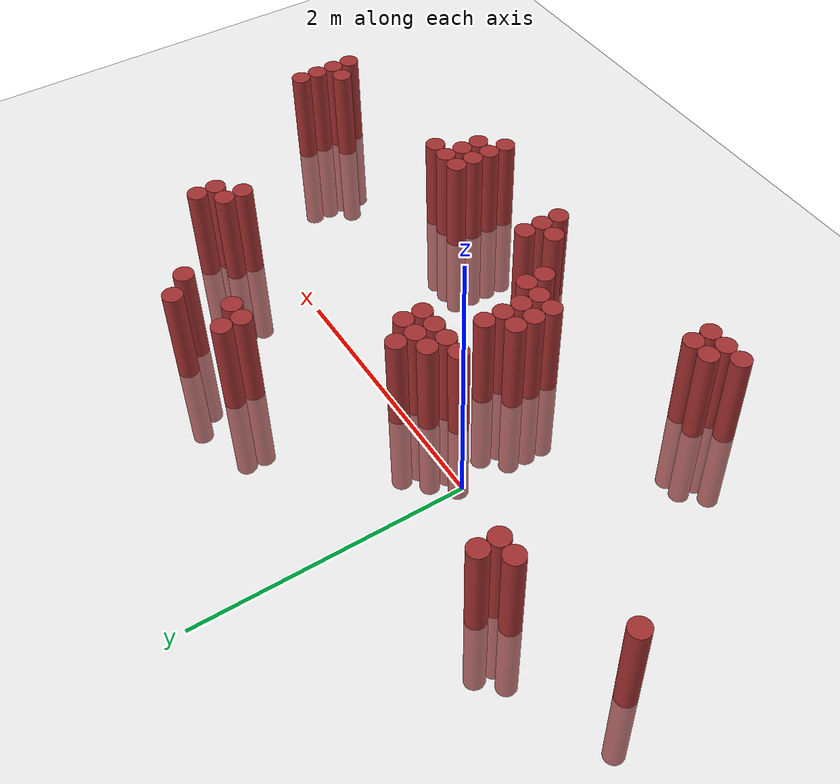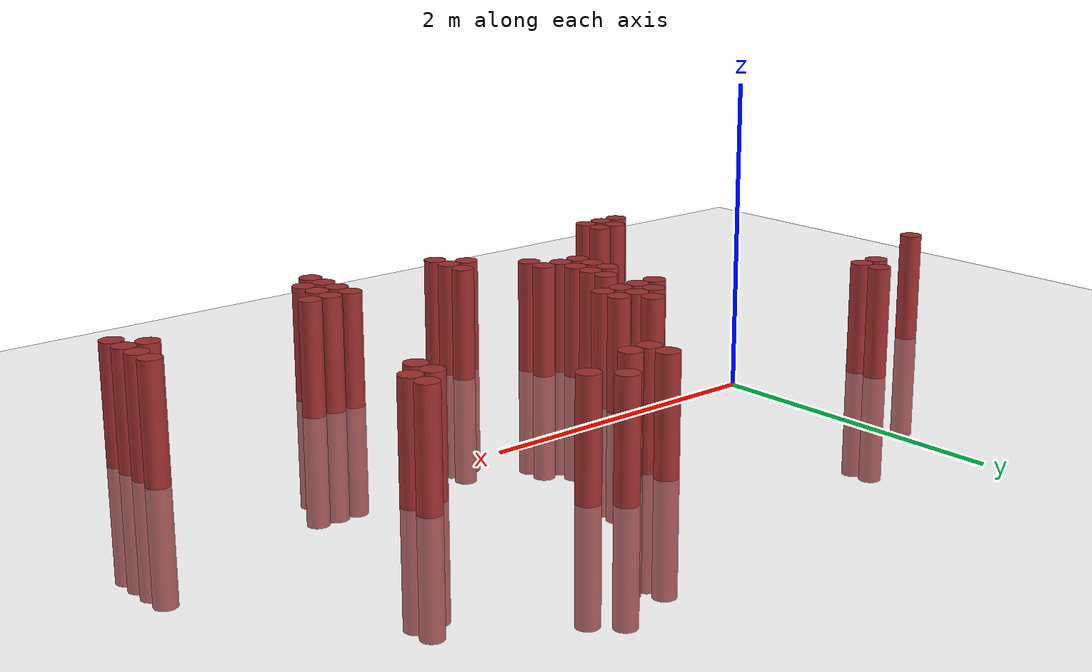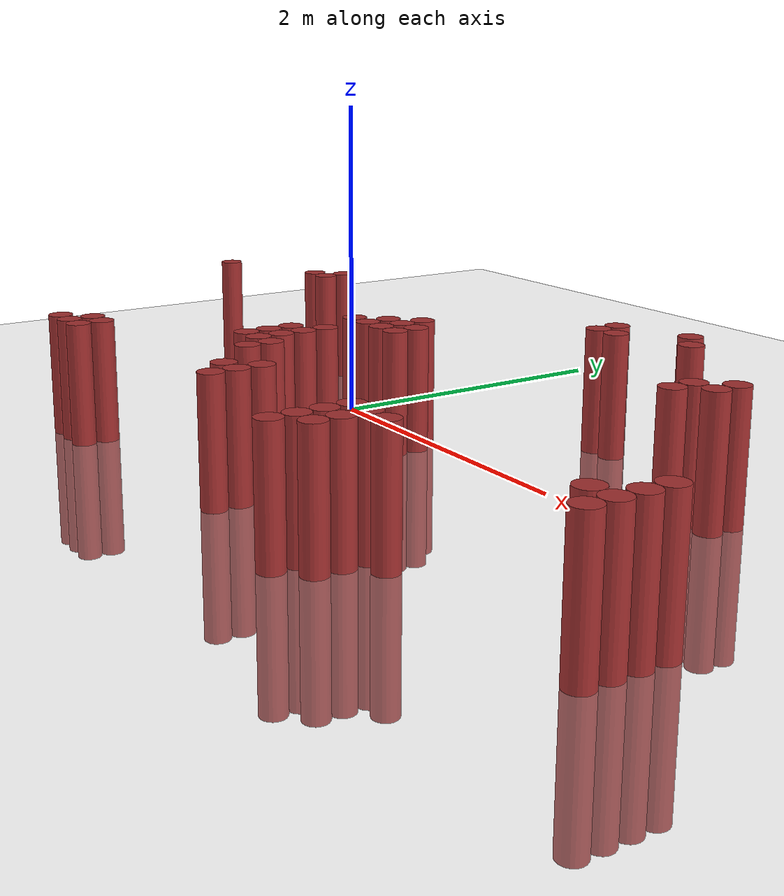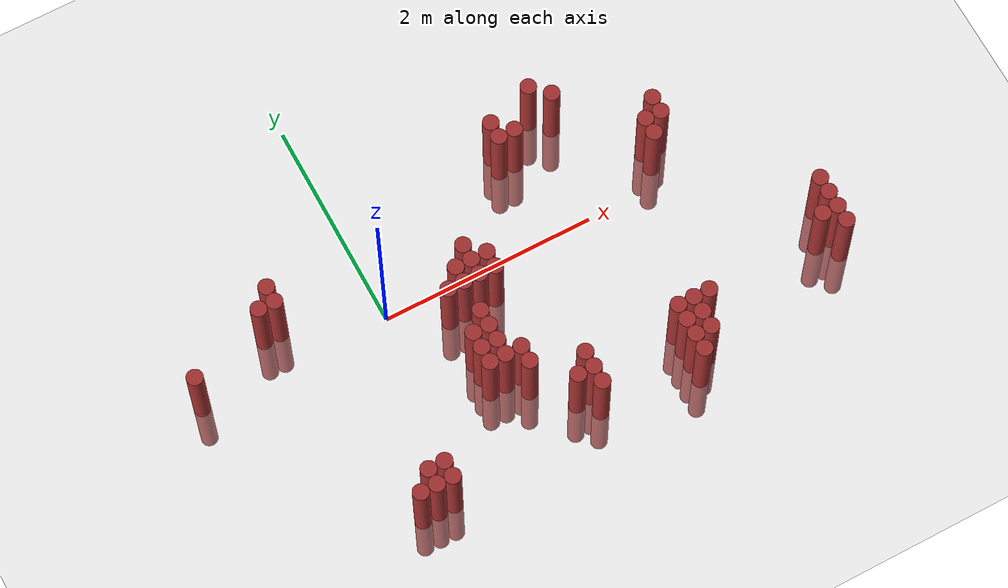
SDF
<sdf version="1.6">
 <world name="default">
  <model name="ground_plane">
   <static>1</static>
   <link name="link">
    <collision name="collision">
     <geometry><plane><normal>0 0 1</normal><size>100 100</size></plane></geometry>
     <surface><friction><ode><mu>100</mu><mu2>50</mu2></ode></friction></surface>
    </collision>
    <visual name="visual">
     <cast_shadows>0</cast_shadows>
     <geometry><plane><normal>0 0 1</normal><size>100 100</size></plane></geometry>
     <material>
      <script><uri>file://media/materials/scripts/gazebo.material</uri><name>Gazebo/Grey</name></script>
     </material>
    </visual>
   </link>
  </model>
  <model name="unit_cylinder_335">
   <static>1</static>
   <pose>-1.775000 0.025000 0.000000 0.000000 0.000000 0.000000</pose>
   <link name="link">
    <inertial>
     <mass>1</mass>
     <inertia><ixx>0.145833</ixx><ixy>0</ixy><ixz>0</ixz><iyy>0.145833</iyy><iyz>0</iyz><izz>0.125</izz></inertia>
    </inertial>
    <collision name="collision">
     <geometry><cylinder><radius>0.075000</radius><length>1.5</length></cylinder></geometry>
    </collision>
    <visual name="visual">
     <geometry><cylinder><radius>0.075000</radius><length>1.5</length></cylinder></geometry>
     <material>
      <ambient>0.648000 0.192000 0.192000 1</ambient>
      <diffuse>0.648000 0.192000 0.192000 1</diffuse>
     </material>
     <material>
      <script><name>Gazebo/Grey</name><uri>file://media/materials/scripts/gazebo.material</uri></script>
     </material>
    </visual>
   </link>
  </model>
  <model name="unit_cylinder_347">
   <static>1</static>
   <pose>-1.025000 0.325000 0.000000 0.000000 0.000000 0.000000</pose>
   <link name="link">
    <inertial>
     <mass>1</mass>
     <inertia><ixx>0.145833</ixx><ixy>0</ixy><ixz>0</ixz><iyy>0.145833</iyy><iyz>0</iyz><izz>0.125</izz></inertia>
    </inertial>
    <collision name="collision">
     <geometry><cylinder><radius>0.075000</radius><length>1.5</length></cylinder></geometry>
    </collision>
    <visual name="visual">
     <geometry><cylinder><radius>0.075000</radius><length>1.5</length></cylinder></geometry>
     <material>
      <ambient>0.648000 0.192000 0.192000 1</ambient>
      <diffuse>0.648000 0.192000 0.192000 1</diffuse>
     </material>
     <material>
      <script><name>Gazebo/Grey</name><uri>file://media/materials/scripts/gazebo.material</uri></script>
     </material>
    </visual>
   </link>
  </model>
  <model name="unit_cylinder_350">
   <static>1</static>
   <pose>-0.875000 0.325000 0.000000 0.000000 0.000000 0.000000</pose>
   <link name="link">
    <inertial>
     <mass>1</mass>
     <inertia><ixx>0.145833</ixx><ixy>0</ixy><ixz>0</ixz><iyy>0.145833</iyy><iyz>0</iyz><izz>0.125</izz></inertia>
    </inertial>
    <collision name="collision">
     <geometry><cylinder><radius>0.075000</radius><length>1.5</length></cylinder></geometry>
    </collision>
    <visual name="visual">
     <geometry><cylinder><radius>0.075000</radius><length>1.5</length></cylinder></geometry>
     <material>
      <ambient>0.648000 0.192000 0.192000 1</ambient>
      <diffuse>0.648000 0.192000 0.192000 1</diffuse>
     </material>
     <material>
      <script><name>Gazebo/Grey</name><uri>file://media/materials/scripts/gazebo.material</uri></script>
     </material>
    </visual>
   </link>
  </model>
  <model name="unit_cylinder_351">
   <static>1</static>
   <pose>-0.875000 0.475000 0.000000 0.000000 0.000000 0.000000</pose>
   <link name="link">
    <inertial>
     <mass>1</mass>
     <inertia><ixx>0.145833</ixx><ixy>0</ixy><ixz>0</ixz><iyy>0.145833</iyy><iyz>0</iyz><izz>0.125</izz></inertia>
    </inertial>
    <collision name="collision">
     <geometry><cylinder><radius>0.075000</radius><length>1.5</length></cylinder></geometry>
    </collision>
    <visual name="visual">
     <geometry><cylinder><radius>0.075000</radius><length>1.5</length></cylinder></geometry>
     <material>
      <ambient>0.648000 0.192000 0.192000 1</ambient>
      <diffuse>0.648000 0.192000 0.192000 1</diffuse>
     </material>
     <material>
      <script><name>Gazebo/Grey</name><uri>file://media/materials/scripts/gazebo.material</uri></script>
     </material>
    </visual>
   </link>
  </model>
  <model name="unit_cylinder_355">
   <static>1</static>
   <pose>-0.575000 -1.775000 0.000000 0.000000 0.000000 0.000000</pose>
   <link name="link">
    <inertial>
     <mass>1</mass>
     <inertia><ixx>0.145833</ixx><ixy>0</ixy><ixz>0</ixz><iyy>0.145833</iyy><iyz>0</iyz><izz>0.125</izz></inertia>
    </inertial>
    <collision name="collision">
     <geometry><cylinder><radius>0.075000</radius><length>1.5</length></cylinder></geometry>
    </collision>
    <visual name="visual">
     <geometry><cylinder><radius>0.075000</radius><length>1.5</length></cylinder></geometry>
     <material>
      <ambient>0.648000 0.192000 0.192000 1</ambient>
      <diffuse>0.648000 0.192000 0.192000 1</diffuse>
     </material>
     <material>
      <script><name>Gazebo/Grey</name><uri>file://media/materials/scripts/gazebo.material</uri></script>
     </material>
    </visual>
   </link>
  </model>
  <model name="unit_cylinder_356">
   <static>1</static>
   <pose>-0.425000 -1.775000 0.000000 0.000000 0.000000 0.000000</pose>
   <link name="link">
    <inertial>
     <mass>1</mass>
     <inertia><ixx>0.145833</ixx><ixy>0</ixy><ixz>0</ixz><iyy>0.145833</iyy><iyz>0</iyz><izz>0.125</izz></inertia>
    </inertial>
    <collision name="collision">
     <geometry><cylinder><radius>0.075000</radius><length>1.5</length></cylinder></geometry>
    </collision>
    <visual name="visual">
     <geometry><cylinder><radius>0.075000</radius><length>1.5</length></cylinder></geometry>
     <material>
      <ambient>0.648000 0.192000 0.192000 1</ambient>
      <diffuse>0.648000 0.192000 0.192000 1</diffuse>
     </material>
     <material>
      <script><name>Gazebo/Grey</name><uri>file://media/materials/scripts/gazebo.material</uri></script>
     </material>
    </visual>
   </link>
  </model>
  <model name="unit_cylinder_357">
   <static>1</static>
   <pose>-0.425000 -1.625000 0.000000 0.000000 0.000000 0.000000</pose>
   <link name="link">
    <inertial>
     <mass>1</mass>
     <inertia><ixx>0.145833</ixx><ixy>0</ixy><ixz>0</ixz><iyy>0.145833</iyy><iyz>0</iyz><izz>0.125</izz></inertia>
    </inertial>
    <collision name="collision">
     <geometry><cylinder><radius>0.075000</radius><length>1.5</length></cylinder></geometry>
    </collision>
    <visual name="visual">
     <geometry><cylinder><radius>0.075000</radius><length>1.5</length></cylinder></geometry>
     <material>
      <ambient>0.648000 0.192000 0.192000 1</ambient>
      <diffuse>0.648000 0.192000 0.192000 1</diffuse>
     </material>
     <material>
      <script><name>Gazebo/Grey</name><uri>file://media/materials/scripts/gazebo.material</uri></script>
     </material>
    </visual>
   </link>
  </model>
  <model name="unit_cylinder_360">
   <static>1</static>
   <pose>-0.275000 -1.775000 0.000000 0.000000 0.000000 0.000000</pose>
   <link name="link">
    <inertial>
     <mass>1</mass>
     <inertia><ixx>0.145833</ixx><ixy>0</ixy><ixz>0</ixz><iyy>0.145833</iyy><iyz>0</iyz><izz>0.125</izz></inertia>
    </inertial>
    <collision name="collision">
     <geometry><cylinder><radius>0.075000</radius><length>1.5</length></cylinder></geometry>
    </collision>
    <visual name="visual">
     <geometry><cylinder><radius>0.075000</radius><length>1.5</length></cylinder></geometry>
     <material>
      <ambient>0.648000 0.192000 0.192000 1</ambient>
      <diffuse>0.648000 0.192000 0.192000 1</diffuse>
     </material>
     <material>
      <script><name>Gazebo/Grey</name><uri>file://media/materials/scripts/gazebo.material</uri></script>
     </material>
    </visual>
   </link>
  </model>
  <model name="unit_cylinder_361">
   <static>1</static>
   <pose>-0.275000 -1.625000 0.000000 0.000000 0.000000 0.000000</pose>
   <link name="link">
    <inertial>
     <mass>1</mass>
     <inertia><ixx>0.145833</ixx><ixy>0</ixy><ixz>0</ixz><iyy>0.145833</iyy><iyz>0</iyz><izz>0.125</izz></inertia>
    </inertial>
    <collision name="collision">
     <geometry><cylinder><radius>0.075000</radius><length>1.5</length></cylinder></geometry>
    </collision>
    <visual name="visual">
     <geometry><cylinder><radius>0.075000</radius><length>1.5</length></cylinder></geometry>
     <material>
      <ambient>0.648000 0.192000 0.192000 1</ambient>
      <diffuse>0.648000 0.192000 0.192000 1</diffuse>
     </material>
     <material>
      <script><name>Gazebo/Grey</name><uri>file://media/materials/scripts/gazebo.material</uri></script>
     </material>
    </visual>
   </link>
  </model>
  <model name="unit_cylinder_363">
   <static>1</static>
   <pose>0.475000 -1.025000 0.000000 0.000000 0.000000 0.000000</pose>
   <link name="link">
    <inertial>
     <mass>1</mass>
     <inertia><ixx>0.145833</ixx><ixy>0</ixy><ixz>0</ixz><iyy>0.145833</iyy><iyz>0</iyz><izz>0.125</izz></inertia>
    </inertial>
    <collision name="collision">
     <geometry><cylinder><radius>0.075000</radius><length>1.5</length></cylinder></geometry>
    </collision>
    <visual name="visual">
     <geometry><cylinder><radius>0.075000</radius><length>1.5</length></cylinder></geometry>
     <material>
      <ambient>0.648000 0.192000 0.192000 1</ambient>
      <diffuse>0.648000 0.192000 0.192000 1</diffuse>
     </material>
     <material>
      <script><name>Gazebo/Grey</name><uri>file://media/materials/scripts/gazebo.material</uri></script>
     </material>
    </visual>
   </link>
  </model>
  <model name="unit_cylinder_364">
   <static>1</static>
   <pose>0.475000 -0.875000 0.000000 0.000000 0.000000 0.000000</pose>
   <link name="link">
    <inertial>
     <mass>1</mass>
     <inertia><ixx>0.145833</ixx><ixy>0</ixy><ixz>0</ixz><iyy>0.145833</iyy><iyz>0</iyz><izz>0.125</izz></inertia>
    </inertial>
    <collision name="collision">
     <geometry><cylinder><radius>0.075000</radius><length>1.5</length></cylinder></geometry>
    </collision>
    <visual name="visual">
     <geometry><cylinder><radius>0.075000</radius><length>1.5</length></cylinder></geometry>
     <material>
      <ambient>0.648000 0.192000 0.192000 1</ambient>
      <diffuse>0.648000 0.192000 0.192000 1</diffuse>
     </material>
     <material>
      <script><name>Gazebo/Grey</name><uri>file://media/materials/scripts/gazebo.material</uri></script>
     </material>
    </visual>
   </link>
  </model>
  <model name="unit_cylinder_365">
   <static>1</static>
   <pose>0.475000 -0.725000 0.000000 0.000000 0.000000 0.000000</pose>
   <link name="link">
    <inertial>
     <mass>1</mass>
     <inertia><ixx>0.145833</ixx><ixy>0</ixy><ixz>0</ixz><iyy>0.145833</iyy><iyz>0</iyz><izz>0.125</izz></inertia>
    </inertial>
    <collision name="collision">
     <geometry><cylinder><radius>0.075000</radius><length>1.5</length></cylinder></geometry>
    </collision>
    <visual name="visual">
     <geometry><cylinder><radius>0.075000</radius><length>1.5</length></cylinder></geometry>
     <material>
      <ambient>0.648000 0.192000 0.192000 1</ambient>
      <diffuse>0.648000 0.192000 0.192000 1</diffuse>
     </material>
     <material>
      <script><name>Gazebo/Grey</name><uri>file://media/materials/scripts/gazebo.material</uri></script>
     </material>
    </visual>
   </link>
  </model>
  <model name="unit_cylinder_366">
   <static>1</static>
   <pose>0.475000 -0.275000 0.000000 0.000000 0.000000 0.000000</pose>
   <link name="link">
    <inertial>
     <mass>1</mass>
     <inertia><ixx>0.145833</ixx><ixy>0</ixy><ixz>0</ixz><iyy>0.145833</iyy><iyz>0</iyz><izz>0.125</izz></inertia>
    </inertial>
    <collision name="collision">
     <geometry><cylinder><radius>0.075000</radius><length>1.5</length></cylinder></geometry>
    </collision>
    <visual name="visual">
     <geometry><cylinder><radius>0.075000</radius><length>1.5</length></cylinder></geometry>
     <material>
      <ambient>0.648000 0.192000 0.192000 1</ambient>
      <diffuse>0.648000 0.192000 0.192000 1</diffuse>
     </material>
     <material>
      <script><name>Gazebo/Grey</name><uri>file://media/materials/scripts/gazebo.material</uri></script>
     </material>
    </visual>
   </link>
  </model>
  <model name="unit_cylinder_367">
   <static>1</static>
   <pose>0.625000 -1.025000 0.000000 0.000000 0.000000 0.000000</pose>
   <link name="link">
    <inertial>
     <mass>1</mass>
     <inertia><ixx>0.145833</ixx><ixy>0</ixy><ixz>0</ixz><iyy>0.145833</iyy><iyz>0</iyz><izz>0.125</izz></inertia>
    </inertial>
    <collision name="collision">
     <geometry><cylinder><radius>0.075000</radius><length>1.5</length></cylinder></geometry>
    </collision>
    <visual name="visual">
     <geometry><cylinder><radius>0.075000</radius><length>1.5</length></cylinder></geometry>
     <material>
      <ambient>0.648000 0.192000 0.192000 1</ambient>
      <diffuse>0.648000 0.192000 0.192000 1</diffuse>
     </material>
     <material>
      <script><name>Gazebo/Grey</name><uri>file://media/materials/scripts/gazebo.material</uri></script>
     </material>
    </visual>
   </link>
  </model>
  <model name="unit_cylinder_368">
   <static>1</static>
   <pose>0.625000 -0.875000 0.000000 0.000000 0.000000 0.000000</pose>
   <link name="link">
    <inertial>
     <mass>1</mass>
     <inertia><ixx>0.145833</ixx><ixy>0</ixy><ixz>0</ixz><iyy>0.145833</iyy><iyz>0</iyz><izz>0.125</izz></inertia>
    </inertial>
    <collision name="collision">
     <geometry><cylinder><radius>0.075000</radius><length>1.5</length></cylinder></geometry>
    </collision>
    <visual name="visual">
     <geometry><cylinder><radius>0.075000</radius><length>1.5</length></cylinder></geometry>
     <material>
      <ambient>0.648000 0.192000 0.192000 1</ambient>
      <diffuse>0.648000 0.192000 0.192000 1</diffuse>
     </material>
     <material>
      <script><name>Gazebo/Grey</name><uri>file://media/materials/scripts/gazebo.material</uri></script>
     </material>
    </visual>
   </link>
  </model>
  <model name="unit_cylinder_369">
   <static>1</static>
   <pose>0.625000 -0.725000 0.000000 0.000000 0.000000 0.000000</pose>
   <link name="link">
    <inertial>
     <mass>1</mass>
     <inertia><ixx>0.145833</ixx><ixy>0</ixy><ixz>0</ixz><iyy>0.145833</iyy><iyz>0</iyz><izz>0.125</izz></inertia>
    </inertial>
    <collision name="collision">
     <geometry><cylinder><radius>0.075000</radius><length>1.5</length></cylinder></geometry>
    </collision>
    <visual name="visual">
     <geometry><cylinder><radius>0.075000</radius><length>1.5</length></cylinder></geometry>
     <material>
      <ambient>0.648000 0.192000 0.192000 1</ambient>
      <diffuse>0.648000 0.192000 0.192000 1</diffuse>
     </material>
     <material>
      <script><name>Gazebo/Grey</name><uri>file://media/materials/scripts/gazebo.material</uri></script>
     </material>
    </visual>
   </link>
  </model>
  <model name="unit_cylinder_370">
   <static>1</static>
   <pose>0.625000 -0.575000 0.000000 0.000000 0.000000 0.000000</pose>
   <link name="link">
    <inertial>
     <mass>1</mass>
     <inertia><ixx>0.145833</ixx><ixy>0</ixy><ixz>0</ixz><iyy>0.145833</iyy><iyz>0</iyz><izz>0.125</izz></inertia>
    </inertial>
    <collision name="collision">
     <geometry><cylinder><radius>0.075000</radius><length>1.5</length></cylinder></geometry>
    </collision>
    <visual name="visual">
     <geometry><cylinder><radius>0.075000</radius><length>1.5</length></cylinder></geometry>
     <material>
      <ambient>0.648000 0.192000 0.192000 1</ambient>
      <diffuse>0.648000 0.192000 0.192000 1</diffuse>
     </material>
     <material>
      <script><name>Gazebo/Grey</name><uri>file://media/materials/scripts/gazebo.material</uri></script>
     </material>
    </visual>
   </link>
  </model>
  <model name="unit_cylinder_371">
   <static>1</static>
   <pose>0.625000 -0.275000 0.000000 0.000000 0.000000 0.000000</pose>
   <link name="link">
    <inertial>
     <mass>1</mass>
     <inertia><ixx>0.145833</ixx><ixy>0</ixy><ixz>0</ixz><iyy>0.145833</iyy><iyz>0</iyz><izz>0.125</izz></inertia>
    </inertial>
    <collision name="collision">
     <geometry><cylinder><radius>0.075000</radius><length>1.5</length></cylinder></geometry>
    </collision>
    <visual name="visual">
     <geometry><cylinder><radius>0.075000</radius><length>1.5</length></cylinder></geometry>
     <material>
      <ambient>0.648000 0.192000 0.192000 1</ambient>
      <diffuse>0.648000 0.192000 0.192000 1</diffuse>
     </material>
     <material>
      <script><name>Gazebo/Grey</name><uri>file://media/materials/scripts/gazebo.material</uri></script>
     </material>
    </visual>
   </link>
  </model>
  <model name="unit_cylinder_372">
   <static>1</static>
   <pose>0.625000 -0.125000 0.000000 0.000000 0.000000 0.000000</pose>
   <link name="link">
    <inertial>
     <mass>1</mass>
     <inertia><ixx>0.145833</ixx><ixy>0</ixy><ixz>0</ixz><iyy>0.145833</iyy><iyz>0</iyz><izz>0.125</izz></inertia>
    </inertial>
    <collision name="collision">
     <geometry><cylinder><radius>0.075000</radius><length>1.5</length></cylinder></geometry>
    </collision>
    <visual name="visual">
     <geometry><cylinder><radius>0.075000</radius><length>1.5</length></cylinder></geometry>
     <material>
      <ambient>0.648000 0.192000 0.192000 1</ambient>
      <diffuse>0.648000 0.192000 0.192000 1</diffuse>
     </material>
     <material>
      <script><name>Gazebo/Grey</name><uri>file://media/materials/scripts/gazebo.material</uri></script>
     </material>
    </visual>
   </link>
  </model>
  <model name="unit_cylinder_373">
   <static>1</static>
   <pose>0.775000 -1.175000 0.000000 0.000000 0.000000 0.000000</pose>
   <link name="link">
    <inertial>
     <mass>1</mass>
     <inertia><ixx>0.145833</ixx><ixy>0</ixy><ixz>0</ixz><iyy>0.145833</iyy><iyz>0</iyz><izz>0.125</izz></inertia>
    </inertial>
    <collision name="collision">
     <geometry><cylinder><radius>0.075000</radius><length>1.5</length></cylinder></geometry>
    </collision>
    <visual name="visual">
     <geometry><cylinder><radius>0.075000</radius><length>1.5</length></cylinder></geometry>
     <material>
      <ambient>0.648000 0.192000 0.192000 1</ambient>
      <diffuse>0.648000 0.192000 0.192000 1</diffuse>
     </material>
     <material>
      <script><name>Gazebo/Grey</name><uri>file://media/materials/scripts/gazebo.material</uri></script>
     </material>
    </visual>
   </link>
  </model>
  <model name="unit_cylinder_374">
   <static>1</static>
   <pose>0.775000 -1.025000 0.000000 0.000000 0.000000 0.000000</pose>
   <link name="link">
    <inertial>
     <mass>1</mass>
     <inertia><ixx>0.145833</ixx><ixy>0</ixy><ixz>0</ixz><iyy>0.145833</iyy><iyz>0</iyz><izz>0.125</izz></inertia>
    </inertial>
    <collision name="collision">
     <geometry><cylinder><radius>0.075000</radius><length>1.5</length></cylinder></geometry>
    </collision>
    <visual name="visual">
     <geometry><cylinder><radius>0.075000</radius><length>1.5</length></cylinder></geometry>
     <material>
      <ambient>0.648000 0.192000 0.192000 1</ambient>
      <diffuse>0.648000 0.192000 0.192000 1</diffuse>
     </material>
     <material>
      <script><name>Gazebo/Grey</name><uri>file://media/materials/scripts/gazebo.material</uri></script>
     </material>
    </visual>
   </link>
  </model>
  <model name="unit_cylinder_375">
   <static>1</static>
   <pose>0.775000 -0.275000 0.000000 0.000000 0.000000 0.000000</pose>
   <link name="link">
    <inertial>
     <mass>1</mass>
     <inertia><ixx>0.145833</ixx><ixy>0</ixy><ixz>0</ixz><iyy>0.145833</iyy><iyz>0</iyz><izz>0.125</izz></inertia>
    </inertial>
    <collision name="collision">
     <geometry><cylinder><radius>0.075000</radius><length>1.5</length></cylinder></geometry>
    </collision>
    <visual name="visual">
     <geometry><cylinder><radius>0.075000</radius><length>1.5</length></cylinder></geometry>
     <material>
      <ambient>0.648000 0.192000 0.192000 1</ambient>
      <diffuse>0.648000 0.192000 0.192000 1</diffuse>
     </material>
     <material>
      <script><name>Gazebo/Grey</name><uri>file://media/materials/scripts/gazebo.material</uri></script>
     </material>
    </visual>
   </link>
  </model>
  <model name="unit_cylinder_376">
   <static>1</static>
   <pose>0.775000 -0.125000 0.000000 0.000000 0.000000 0.000000</pose>
   <link name="link">
    <inertial>
     <mass>1</mass>
     <inertia><ixx>0.145833</ixx><ixy>0</ixy><ixz>0</ixz><iyy>0.145833</iyy><iyz>0</iyz><izz>0.125</izz></inertia>
    </inertial>
    <collision name="collision">
     <geometry><cylinder><radius>0.075000</radius><length>1.5</length></cylinder></geometry>
    </collision>
    <visual name="visual">
     <geometry><cylinder><radius>0.075000</radius><length>1.5</length></cylinder></geometry>
     <material>
      <ambient>0.648000 0.192000 0.192000 1</ambient>
      <diffuse>0.648000 0.192000 0.192000 1</diffuse>
     </material>
     <material>
      <script><name>Gazebo/Grey</name><uri>file://media/materials/scripts/gazebo.material</uri></script>
     </material>
    </visual>
   </link>
  </model>
  <model name="unit_cylinder_377">
   <static>1</static>
   <pose>0.775000 0.025000 0.000000 0.000000 0.000000 0.000000</pose>
   <link name="link">
    <inertial>
     <mass>1</mass>
     <inertia><ixx>0.145833</ixx><ixy>0</ixy><ixz>0</ixz><iyy>0.145833</iyy><iyz>0</iyz><izz>0.125</izz></inertia>
    </inertial>
    <collision name="collision">
     <geometry><cylinder><radius>0.075000</radius><length>1.5</length></cylinder></geometry>
    </collision>
    <visual name="visual">
     <geometry><cylinder><radius>0.075000</radius><length>1.5</length></cylinder></geometry>
     <material>
      <ambient>0.648000 0.192000 0.192000 1</ambient>
      <diffuse>0.648000 0.192000 0.192000 1</diffuse>
     </material>
     <material>
      <script><name>Gazebo/Grey</name><uri>file://media/materials/scripts/gazebo.material</uri></script>
     </material>
    </visual>
   </link>
  </model>
  <model name="unit_cylinder_378">
   <static>1</static>
   <pose>0.925000 -0.275000 0.000000 0.000000 0.000000 0.000000</pose>
   <link name="link">
    <inertial>
     <mass>1</mass>
     <inertia><ixx>0.145833</ixx><ixy>0</ixy><ixz>0</ixz><iyy>0.145833</iyy><iyz>0</iyz><izz>0.125</izz></inertia>
    </inertial>
    <collision name="collision">
     <geometry><cylinder><radius>0.075000</radius><length>1.5</length></cylinder></geometry>
    </collision>
    <visual name="visual">
     <geometry><cylinder><radius>0.075000</radius><length>1.5</length></cylinder></geometry>
     <material>
      <ambient>0.648000 0.192000 0.192000 1</ambient>
      <diffuse>0.648000 0.192000 0.192000 1</diffuse>
     </material>
     <material>
      <script><name>Gazebo/Grey</name><uri>file://media/materials/scripts/gazebo.material</uri></script>
     </material>
    </visual>
   </link>
  </model>
  <model name="unit_cylinder_379">
   <static>1</static>
   <pose>0.925000 -0.125000 0.000000 0.000000 0.000000 0.000000</pose>
   <link name="link">
    <inertial>
     <mass>1</mass>
     <inertia><ixx>0.145833</ixx><ixy>0</ixy><ixz>0</ixz><iyy>0.145833</iyy><iyz>0</iyz><izz>0.125</izz></inertia>
    </inertial>
    <collision name="collision">
     <geometry><cylinder><radius>0.075000</radius><length>1.5</length></cylinder></geometry>
    </collision>
    <visual name="visual">
     <geometry><cylinder><radius>0.075000</radius><length>1.5</length></cylinder></geometry>
     <material>
      <ambient>0.648000 0.192000 0.192000 1</ambient>
      <diffuse>0.648000 0.192000 0.192000 1</diffuse>
     </material>
     <material>
      <script><name>Gazebo/Grey</name><uri>file://media/materials/scripts/gazebo.material</uri></script>
     </material>
    </visual>
   </link>
  </model>
  <model name="unit_cylinder_380">
   <static>1</static>
   <pose>1.075000 -1.475000 0.000000 0.000000 0.000000 0.000000</pose>
   <link name="link">
    <inertial>
     <mass>1</mass>
     <inertia><ixx>0.145833</ixx><ixy>0</ixy><ixz>0</ixz><iyy>0.145833</iyy><iyz>0</iyz><izz>0.125</izz></inertia>
    </inertial>
    <collision name="collision">
     <geometry><cylinder><radius>0.075000</radius><length>1.5</length></cylinder></geometry>
    </collision>
    <visual name="visual">
     <geometry><cylinder><radius>0.075000</radius><length>1.5</length></cylinder></geometry>
     <material>
      <ambient>0.648000 0.192000 0.192000 1</ambient>
      <diffuse>0.648000 0.192000 0.192000 1</diffuse>
     </material>
     <material>
      <script><name>Gazebo/Grey</name><uri>file://media/materials/scripts/gazebo.material</uri></script>
     </material>
    </visual>
   </link>
  </model>
  <model name="unit_cylinder_381">
   <static>1</static>
   <pose>1.225000 -1.625000 0.000000 0.000000 0.000000 0.000000</pose>
   <link name="link">
    <inertial>
     <mass>1</mass>
     <inertia><ixx>0.145833</ixx><ixy>0</ixy><ixz>0</ixz><iyy>0.145833</iyy><iyz>0</iyz><izz>0.125</izz></inertia>
    </inertial>
    <collision name="collision">
     <geometry><cylinder><radius>0.075000</radius><length>1.5</length></cylinder></geometry>
    </collision>
    <visual name="visual">
     <geometry><cylinder><radius>0.075000</radius><length>1.5</length></cylinder></geometry>
     <material>
      <ambient>0.648000 0.192000 0.192000 1</ambient>
      <diffuse>0.648000 0.192000 0.192000 1</diffuse>
     </material>
     <material>
      <script><name>Gazebo/Grey</name><uri>file://media/materials/scripts/gazebo.material</uri></script>
     </material>
    </visual>
   </link>
  </model>
  <model name="unit_cylinder_382">
   <static>1</static>
   <pose>1.225000 -1.475000 0.000000 0.000000 0.000000 0.000000</pose>
   <link name="link">
    <inertial>
     <mass>1</mass>
     <inertia><ixx>0.145833</ixx><ixy>0</ixy><ixz>0</ixz><iyy>0.145833</iyy><iyz>0</iyz><izz>0.125</izz></inertia>
    </inertial>
    <collision name="collision">
     <geometry><cylinder><radius>0.075000</radius><length>1.5</length></cylinder></geometry>
    </collision>
    <visual name="visual">
     <geometry><cylinder><radius>0.075000</radius><length>1.5</length></cylinder></geometry>
     <material>
      <ambient>0.648000 0.192000 0.192000 1</ambient>
      <diffuse>0.648000 0.192000 0.192000 1</diffuse>
     </material>
     <material>
      <script><name>Gazebo/Grey</name><uri>file://media/materials/scripts/gazebo.material</uri></script>
     </material>
    </visual>
   </link>
  </model>
  <model name="unit_cylinder_383">
   <static>1</static>
   <pose>1.225000 -1.325000 0.000000 0.000000 0.000000 0.000000</pose>
   <link name="link">
    <inertial>
     <mass>1</mass>
     <inertia><ixx>0.145833</ixx><ixy>0</ixy><ixz>0</ixz><iyy>0.145833</iyy><iyz>0</iyz><izz>0.125</izz></inertia>
    </inertial>
    <collision name="collision">
     <geometry><cylinder><radius>0.075000</radius><length>1.5</length></cylinder></geometry>
    </collision>
    <visual name="visual">
     <geometry><cylinder><radius>0.075000</radius><length>1.5</length></cylinder></geometry>
     <material>
      <ambient>0.648000 0.192000 0.192000 1</ambient>
      <diffuse>0.648000 0.192000 0.192000 1</diffuse>
     </material>
     <material>
      <script><name>Gazebo/Grey</name><uri>file://media/materials/scripts/gazebo.material</uri></script>
     </material>
    </visual>
   </link>
  </model>
  <model name="unit_cylinder_384">
   <static>1</static>
   <pose>1.525000 0.775000 0.000000 0.000000 0.000000 0.000000</pose>
   <link name="link">
    <inertial>
     <mass>1</mass>
     <inertia><ixx>0.145833</ixx><ixy>0</ixy><ixz>0</ixz><iyy>0.145833</iyy><iyz>0</iyz><izz>0.125</izz></inertia>
    </inertial>
    <collision name="collision">
     <geometry><cylinder><radius>0.075000</radius><length>1.5</length></cylinder></geometry>
    </collision>
    <visual name="visual">
     <geometry><cylinder><radius>0.075000</radius><length>1.5</length></cylinder></geometry>
     <material>
      <ambient>0.648000 0.192000 0.192000 1</ambient>
      <diffuse>0.648000 0.192000 0.192000 1</diffuse>
     </material>
     <material>
      <script><name>Gazebo/Grey</name><uri>file://media/materials/scripts/gazebo.material</uri></script>
     </material>
    </visual>
   </link>
  </model>
  <model name="unit_cylinder_385">
   <static>1</static>
   <pose>1.525000 0.925000 0.000000 0.000000 0.000000 0.000000</pose>
   <link name="link">
    <inertial>
     <mass>1</mass>
     <inertia><ixx>0.145833</ixx><ixy>0</ixy><ixz>0</ixz><iyy>0.145833</iyy><iyz>0</iyz><izz>0.125</izz></inertia>
    </inertial>
    <collision name="collision">
     <geometry><cylinder><radius>0.075000</radius><length>1.5</length></cylinder></geometry>
    </collision>
    <visual name="visual">
     <geometry><cylinder><radius>0.075000</radius><length>1.5</length></cylinder></geometry>
     <material>
      <ambient>0.648000 0.192000 0.192000 1</ambient>
      <diffuse>0.648000 0.192000 0.192000 1</diffuse>
     </material>
     <material>
      <script><name>Gazebo/Grey</name><uri>file://media/materials/scripts/gazebo.material</uri></script>
     </material>
    </visual>
   </link>
  </model>
  <model name="unit_cylinder_388">
   <static>1</static>
   <pose>1.675000 0.775000 0.000000 0.000000 0.000000 0.000000</pose>
   <link name="link">
    <inertial>
     <mass>1</mass>
     <inertia><ixx>0.145833</ixx><ixy>0</ixy><ixz>0</ixz><iyy>0.145833</iyy><iyz>0</iyz><izz>0.125</izz></inertia>
    </inertial>
    <collision name="collision">
     <geometry><cylinder><radius>0.075000</radius><length>1.5</length></cylinder></geometry>
    </collision>
    <visual name="visual">
     <geometry><cylinder><radius>0.075000</radius><length>1.5</length></cylinder></geometry>
     <material>
      <ambient>0.648000 0.192000 0.192000 1</ambient>
      <diffuse>0.648000 0.192000 0.192000 1</diffuse>
     </material>
     <material>
      <script><name>Gazebo/Grey</name><uri>file://media/materials/scripts/gazebo.material</uri></script>
     </material>
    </visual>
   </link>
  </model>
  <model name="unit_cylinder_394">
   <static>1</static>
   <pose>1.975000 1.075000 0.000000 0.000000 0.000000 0.000000</pose>
   <link name="link">
    <inertial>
     <mass>1</mass>
     <inertia><ixx>0.145833</ixx><ixy>0</ixy><ixz>0</ixz><iyy>0.145833</iyy><iyz>0</iyz><izz>0.125</izz></inertia>
    </inertial>
    <collision name="collision">
     <geometry><cylinder><radius>0.075000</radius><length>1.5</length></cylinder></geometry>
    </collision>
    <visual name="visual">
     <geometry><cylinder><radius>0.075000</radius><length>1.5</length></cylinder></geometry>
     <material>
      <ambient>0.648000 0.192000 0.192000 1</ambient>
      <diffuse>0.648000 0.192000 0.192000 1</diffuse>
     </material>
     <material>
      <script><name>Gazebo/Grey</name><uri>file://media/materials/scripts/gazebo.material</uri></script>
     </material>
    </visual>
   </link>
  </model>
  <model name="unit_cylinder_401">
   <static>1</static>
   <pose>2.125000 -1.775000 0.000000 0.000000 0.000000 0.000000</pose>
   <link name="link">
    <inertial>
     <mass>1</mass>
     <inertia><ixx>0.145833</ixx><ixy>0</ixy><ixz>0</ixz><iyy>0.145833</iyy><iyz>0</iyz><izz>0.125</izz></inertia>
    </inertial>
    <collision name="collision">
     <geometry><cylinder><radius>0.075000</radius><length>1.5</length></cylinder></geometry>
    </collision>
    <visual name="visual">
     <geometry><cylinder><radius>0.075000</radius><length>1.5</length></cylinder></geometry>
     <material>
      <ambient>0.648000 0.192000 0.192000 1</ambient>
      <diffuse>0.648000 0.192000 0.192000 1</diffuse>
     </material>
     <material>
      <script><name>Gazebo/Grey</name><uri>file://media/materials/scripts/gazebo.material</uri></script>
     </material>
    </visual>
   </link>
  </model>
  <model name="unit_cylinder_402">
   <static>1</static>
   <pose>2.125000 -1.625000 0.000000 0.000000 0.000000 0.000000</pose>
   <link name="link">
    <inertial>
     <mass>1</mass>
     <inertia><ixx>0.145833</ixx><ixy>0</ixy><ixz>0</ixz><iyy>0.145833</iyy><iyz>0</iyz><izz>0.125</izz></inertia>
    </inertial>
    <collision name="collision">
     <geometry><cylinder><radius>0.075000</radius><length>1.5</length></cylinder></geometry>
    </collision>
    <visual name="visual">
     <geometry><cylinder><radius>0.075000</radius><length>1.5</length></cylinder></geometry>
     <material>
      <ambient>0.648000 0.192000 0.192000 1</ambient>
      <diffuse>0.648000 0.192000 0.192000 1</diffuse>
     </material>
     <material>
      <script><name>Gazebo/Grey</name><uri>file://media/materials/scripts/gazebo.material</uri></script>
     </material>
    </visual>
   </link>
  </model>
  <model name="unit_cylinder_403">
   <static>1</static>
   <pose>2.125000 -1.475000 0.000000 0.000000 0.000000 0.000000</pose>
   <link name="link">
    <inertial>
     <mass>1</mass>
     <inertia><ixx>0.145833</ixx><ixy>0</ixy><ixz>0</ixz><iyy>0.145833</iyy><iyz>0</iyz><izz>0.125</izz></inertia>
    </inertial>
    <collision name="collision">
     <geometry><cylinder><radius>0.075000</radius><length>1.5</length></cylinder></geometry>
    </collision>
    <visual name="visual">
     <geometry><cylinder><radius>0.075000</radius><length>1.5</length></cylinder></geometry>
     <material>
      <ambient>0.648000 0.192000 0.192000 1</ambient>
      <diffuse>0.648000 0.192000 0.192000 1</diffuse>
     </material>
     <material>
      <script><name>Gazebo/Grey</name><uri>file://media/materials/scripts/gazebo.material</uri></script>
     </material>
    </visual>
   </link>
  </model>
  <model name="unit_cylinder_404">
   <static>1</static>
   <pose>2.125000 -1.325000 0.000000 0.000000 0.000000 0.000000</pose>
   <link name="link">
    <inertial>
     <mass>1</mass>
     <inertia><ixx>0.145833</ixx><ixy>0</ixy><ixz>0</ixz><iyy>0.145833</iyy><iyz>0</iyz><izz>0.125</izz></inertia>
    </inertial>
    <collision name="collision">
     <geometry><cylinder><radius>0.075000</radius><length>1.5</length></cylinder></geometry>
    </collision>
    <visual name="visual">
     <geometry><cylinder><radius>0.075000</radius><length>1.5</length></cylinder></geometry>
     <material>
      <ambient>0.648000 0.192000 0.192000 1</ambient>
      <diffuse>0.648000 0.192000 0.192000 1</diffuse>
     </material>
     <material>
      <script><name>Gazebo/Grey</name><uri>file://media/materials/scripts/gazebo.material</uri></script>
     </material>
    </visual>
   </link>
  </model>
  <model name="unit_cylinder_405">
   <static>1</static>
   <pose>2.125000 0.925000 0.000000 0.000000 0.000000 0.000000</pose>
   <link name="link">
    <inertial>
     <mass>1</mass>
     <inertia><ixx>0.145833</ixx><ixy>0</ixy><ixz>0</ixz><iyy>0.145833</iyy><iyz>0</iyz><izz>0.125</izz></inertia>
    </inertial>
    <collision name="collision">
     <geometry><cylinder><radius>0.075000</radius><length>1.5</length></cylinder></geometry>
    </collision>
    <visual name="visual">
     <geometry><cylinder><radius>0.075000</radius><length>1.5</length></cylinder></geometry>
     <material>
      <ambient>0.648000 0.192000 0.192000 1</ambient>
      <diffuse>0.648000 0.192000 0.192000 1</diffuse>
     </material>
     <material>
      <script><name>Gazebo/Grey</name><uri>file://media/materials/scripts/gazebo.material</uri></script>
     </material>
    </visual>
   </link>
  </model>
  <model name="unit_cylinder_410">
   <static>1</static>
   <pose>2.275000 -1.625000 0.000000 0.000000 0.000000 0.000000</pose>
   <link name="link">
    <inertial>
     <mass>1</mass>
     <inertia><ixx>0.145833</ixx><ixy>0</ixy><ixz>0</ixz><iyy>0.145833</iyy><iyz>0</iyz><izz>0.125</izz></inertia>
    </inertial>
    <collision name="collision">
     <geometry><cylinder><radius>0.075000</radius><length>1.5</length></cylinder></geometry>
    </collision>
    <visual name="visual">
     <geometry><cylinder><radius>0.075000</radius><length>1.5</length></cylinder></geometry>
     <material>
      <ambient>0.648000 0.192000 0.192000 1</ambient>
      <diffuse>0.648000 0.192000 0.192000 1</diffuse>
     </material>
     <material>
      <script><name>Gazebo/Grey</name><uri>file://media/materials/scripts/gazebo.material</uri></script>
     </material>
    </visual>
   </link>
  </model>
  <model name="unit_cylinder_411">
   <static>1</static>
   <pose>2.275000 -1.475000 0.000000 0.000000 0.000000 0.000000</pose>
   <link name="link">
    <inertial>
     <mass>1</mass>
     <inertia><ixx>0.145833</ixx><ixy>0</ixy><ixz>0</ixz><iyy>0.145833</iyy><iyz>0</iyz><izz>0.125</izz></inertia>
    </inertial>
    <collision name="collision">
     <geometry><cylinder><radius>0.075000</radius><length>1.5</length></cylinder></geometry>
    </collision>
    <visual name="visual">
     <geometry><cylinder><radius>0.075000</radius><length>1.5</length></cylinder></geometry>
     <material>
      <ambient>0.648000 0.192000 0.192000 1</ambient>
      <diffuse>0.648000 0.192000 0.192000 1</diffuse>
     </material>
     <material>
      <script><name>Gazebo/Grey</name><uri>file://media/materials/scripts/gazebo.material</uri></script>
     </material>
    </visual>
   </link>
  </model>
  <model name="unit_cylinder_412">
   <static>1</static>
   <pose>2.275000 -1.325000 0.000000 0.000000 0.000000 0.000000</pose>
   <link name="link">
    <inertial>
     <mass>1</mass>
     <inertia><ixx>0.145833</ixx><ixy>0</ixy><ixz>0</ixz><iyy>0.145833</iyy><iyz>0</iyz><izz>0.125</izz></inertia>
    </inertial>
    <collision name="collision">
     <geometry><cylinder><radius>0.075000</radius><length>1.5</length></cylinder></geometry>
    </collision>
    <visual name="visual">
     <geometry><cylinder><radius>0.075000</radius><length>1.5</length></cylinder></geometry>
     <material>
      <ambient>0.648000 0.192000 0.192000 1</ambient>
      <diffuse>0.648000 0.192000 0.192000 1</diffuse>
     </material>
     <material>
      <script><name>Gazebo/Grey</name><uri>file://media/materials/scripts/gazebo.material</uri></script>
     </material>
    </visual>
   </link>
  </model>
  <model name="unit_cylinder_414">
   <static>1</static>
   <pose>2.425000 -1.325000 0.000000 0.000000 0.000000 0.000000</pose>
   <link name="link">
    <inertial>
     <mass>1</mass>
     <inertia><ixx>0.145833</ixx><ixy>0</ixy><ixz>0</ixz><iyy>0.145833</iyy><iyz>0</iyz><izz>0.125</izz></inertia>
    </inertial>
    <collision name="collision">
     <geometry><cylinder><radius>0.075000</radius><length>1.5</length></cylinder></geometry>
    </collision>
    <visual name="visual">
     <geometry><cylinder><radius>0.075000</radius><length>1.5</length></cylinder></geometry>
     <material>
      <ambient>0.648000 0.192000 0.192000 1</ambient>
      <diffuse>0.648000 0.192000 0.192000 1</diffuse>
     </material>
     <material>
      <script><name>Gazebo/Grey</name><uri>file://media/materials/scripts/gazebo.material</uri></script>
     </material>
    </visual>
   </link>
  </model>
  <model name="unit_cylinder_416">
   <static>1</static>
   <pose>2.725000 0.175000 0.000000 0.000000 0.000000 0.000000</pose>
   <link name="link">
    <inertial>
     <mass>1</mass>
     <inertia><ixx>0.145833</ixx><ixy>0</ixy><ixz>0</ixz><iyy>0.145833</iyy><iyz>0</iyz><izz>0.125</izz></inertia>
    </inertial>
    <collision name="collision">
     <geometry><cylinder><radius>0.075000</radius><length>1.5</length></cylinder></geometry>
    </collision>
    <visual name="visual">
     <geometry><cylinder><radius>0.075000</radius><length>1.5</length></cylinder></geometry>
     <material>
      <ambient>0.648000 0.192000 0.192000 1</ambient>
      <diffuse>0.648000 0.192000 0.192000 1</diffuse>
     </material>
     <material>
      <script><name>Gazebo/Grey</name><uri>file://media/materials/scripts/gazebo.material</uri></script>
     </material>
    </visual>
   </link>
  </model>
  <model name="unit_cylinder_417">
   <static>1</static>
   <pose>2.725000 0.325000 0.000000 0.000000 0.000000 0.000000</pose>
   <link name="link">
    <inertial>
     <mass>1</mass>
     <inertia><ixx>0.145833</ixx><ixy>0</ixy><ixz>0</ixz><iyy>0.145833</iyy><iyz>0</iyz><izz>0.125</izz></inertia>
    </inertial>
    <collision name="collision">
     <geometry><cylinder><radius>0.075000</radius><length>1.5</length></cylinder></geometry>
    </collision>
    <visual name="visual">
     <geometry><cylinder><radius>0.075000</radius><length>1.5</length></cylinder></geometry>
     <material>
      <ambient>0.648000 0.192000 0.192000 1</ambient>
      <diffuse>0.648000 0.192000 0.192000 1</diffuse>
     </material>
     <material>
      <script><name>Gazebo/Grey</name><uri>file://media/materials/scripts/gazebo.material</uri></script>
     </material>
    </visual>
   </link>
  </model>
  <model name="unit_cylinder_418">
   <static>1</static>
   <pose>2.875000 0.325000 0.000000 0.000000 0.000000 0.000000</pose>
   <link name="link">
    <inertial>
     <mass>1</mass>
     <inertia><ixx>0.145833</ixx><ixy>0</ixy><ixz>0</ixz><iyy>0.145833</iyy><iyz>0</iyz><izz>0.125</izz></inertia>
    </inertial>
    <collision name="collision">
     <geometry><cylinder><radius>0.075000</radius><length>1.5</length></cylinder></geometry>
    </collision>
    <visual name="visual">
     <geometry><cylinder><radius>0.075000</radius><length>1.5</length></cylinder></geometry>
     <material>
      <ambient>0.648000 0.192000 0.192000 1</ambient>
      <diffuse>0.648000 0.192000 0.192000 1</diffuse>
     </material>
     <material>
      <script><name>Gazebo/Grey</name><uri>file://media/materials/scripts/gazebo.material</uri></script>
     </material>
    </visual>
   </link>
  </model>
  <model name="unit_cylinder_419">
   <static>1</static>
   <pose>2.875000 0.475000 0.000000 0.000000 0.000000 0.000000</pose>
   <link name="link">
    <inertial>
     <mass>1</mass>
     <inertia><ixx>0.145833</ixx><ixy>0</ixy><ixz>0</ixz><iyy>0.145833</iyy><iyz>0</iyz><izz>0.125</izz></inertia>
    </inertial>
    <collision name="collision">
     <geometry><cylinder><radius>0.075000</radius><length>1.5</length></cylinder></geometry>
    </collision>
    <visual name="visual">
     <geometry><cylinder><radius>0.075000</radius><length>1.5</length></cylinder></geometry>
     <material>
      <ambient>0.648000 0.192000 0.192000 1</ambient>
      <diffuse>0.648000 0.192000 0.192000 1</diffuse>
     </material>
     <material>
      <script><name>Gazebo/Grey</name><uri>file://media/materials/scripts/gazebo.material</uri></script>
     </material>
    </visual>
   </link>
  </model>
  <model name="unit_cylinder_439">
   <static>1</static>
   <pose>3.625000 -1.175000 0.000000 0.000000 0.000000 0.000000</pose>
   <link name="link">
    <inertial>
     <mass>1</mass>
     <inertia><ixx>0.145833</ixx><ixy>0</ixy><ixz>0</ixz><iyy>0.145833</iyy><iyz>0</iyz><izz>0.125</izz></inertia>
    </inertial>
    <collision name="collision">
     <geometry><cylinder><radius>0.075000</radius><length>1.5</length></cylinder></geometry>
    </collision>
    <visual name="visual">
     <geometry><cylinder><radius>0.075000</radius><length>1.5</length></cylinder></geometry>
     <material>
      <ambient>0.648000 0.192000 0.192000 1</ambient>
      <diffuse>0.648000 0.192000 0.192000 1</diffuse>
     </material>
     <material>
      <script><name>Gazebo/Grey</name><uri>file://media/materials/scripts/gazebo.material</uri></script>
     </material>
    </visual>
   </link>
  </model>
  <model name="unit_cylinder_448">
   <static>1</static>
   <pose>3.775000 -1.325000 0.000000 0.000000 0.000000 0.000000</pose>
   <link name="link">
    <inertial>
     <mass>1</mass>
     <inertia><ixx>0.145833</ixx><ixy>0</ixy><ixz>0</ixz><iyy>0.145833</iyy><iyz>0</iyz><izz>0.125</izz></inertia>
    </inertial>
    <collision name="collision">
     <geometry><cylinder><radius>0.075000</radius><length>1.5</length></cylinder></geometry>
    </collision>
    <visual name="visual">
     <geometry><cylinder><radius>0.075000</radius><length>1.5</length></cylinder></geometry>
     <material>
      <ambient>0.648000 0.192000 0.192000 1</ambient>
      <diffuse>0.648000 0.192000 0.192000 1</diffuse>
     </material>
     <material>
      <script><name>Gazebo/Grey</name><uri>file://media/materials/scripts/gazebo.material</uri></script>
     </material>
    </visual>
   </link>
  </model>
  <model name="unit_cylinder_449">
   <static>1</static>
   <pose>3.775000 -1.175000 0.000000 0.000000 0.000000 0.000000</pose>
   <link name="link">
    <inertial>
     <mass>1</mass>
     <inertia><ixx>0.145833</ixx><ixy>0</ixy><ixz>0</ixz><iyy>0.145833</iyy><iyz>0</iyz><izz>0.125</izz></inertia>
    </inertial>
    <collision name="collision">
     <geometry><cylinder><radius>0.075000</radius><length>1.5</length></cylinder></geometry>
    </collision>
    <visual name="visual">
     <geometry><cylinder><radius>0.075000</radius><length>1.5</length></cylinder></geometry>
     <material>
      <ambient>0.648000 0.192000 0.192000 1</ambient>
      <diffuse>0.648000 0.192000 0.192000 1</diffuse>
     </material>
     <material>
      <script><name>Gazebo/Grey</name><uri>file://media/materials/scripts/gazebo.material</uri></script>
     </material>
    </visual>
   </link>
  </model>
  <model name="unit_cylinder_450">
   <static>1</static>
   <pose>3.775000 -1.025000 0.000000 0.000000 0.000000 0.000000</pose>
   <link name="link">
    <inertial>
     <mass>1</mass>
     <inertia><ixx>0.145833</ixx><ixy>0</ixy><ixz>0</ixz><iyy>0.145833</iyy><iyz>0</iyz><izz>0.125</izz></inertia>
    </inertial>
    <collision name="collision">
     <geometry><cylinder><radius>0.075000</radius><length>1.5</length></cylinder></geometry>
    </collision>
    <visual name="visual">
     <geometry><cylinder><radius>0.075000</radius><length>1.5</length></cylinder></geometry>
     <material>
      <ambient>0.648000 0.192000 0.192000 1</ambient>
      <diffuse>0.648000 0.192000 0.192000 1</diffuse>
     </material>
     <material>
      <script><name>Gazebo/Grey</name><uri>file://media/materials/scripts/gazebo.material</uri></script>
     </material>
    </visual>
   </link>
  </model>
  <model name="unit_cylinder_451">
   <static>1</static>
   <pose>3.775000 -0.875000 0.000000 0.000000 0.000000 0.000000</pose>
   <link name="link">
    <inertial>
     <mass>1</mass>
     <inertia><ixx>0.145833</ixx><ixy>0</ixy><ixz>0</ixz><iyy>0.145833</iyy><iyz>0</iyz><izz>0.125</izz></inertia>
    </inertial>
    <collision name="collision">
     <geometry><cylinder><radius>0.075000</radius><length>1.5</length></cylinder></geometry>
    </collision>
    <visual name="visual">
     <geometry><cylinder><radius>0.075000</radius><length>1.5</length></cylinder></geometry>
     <material>
      <ambient>0.648000 0.192000 0.192000 1</ambient>
      <diffuse>0.648000 0.192000 0.192000 1</diffuse>
     </material>
     <material>
      <script><name>Gazebo/Grey</name><uri>file://media/materials/scripts/gazebo.material</uri></script>
     </material>
    </visual>
   </link>
  </model>
 </world>
</sdf>
